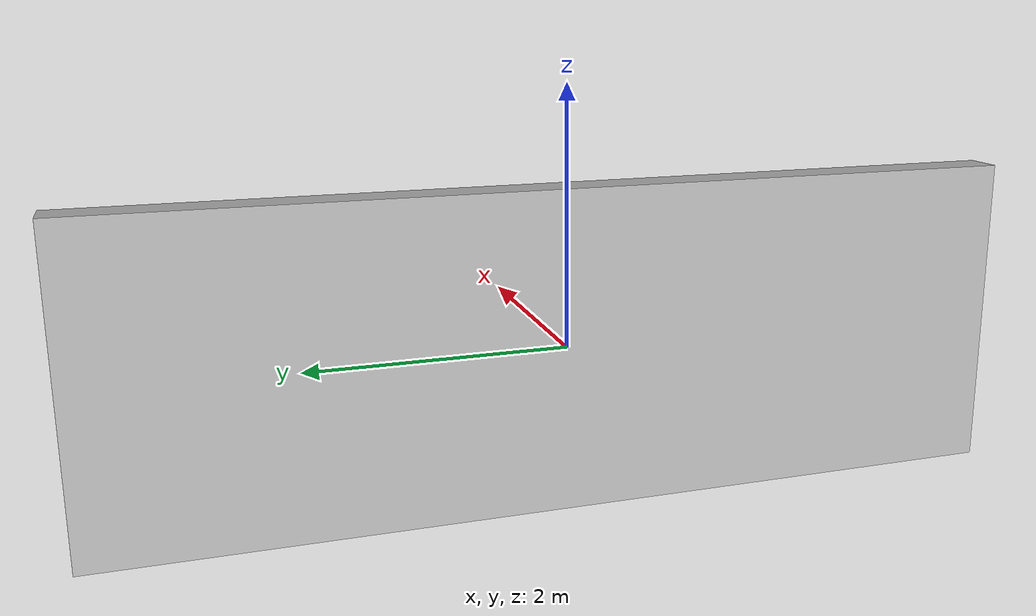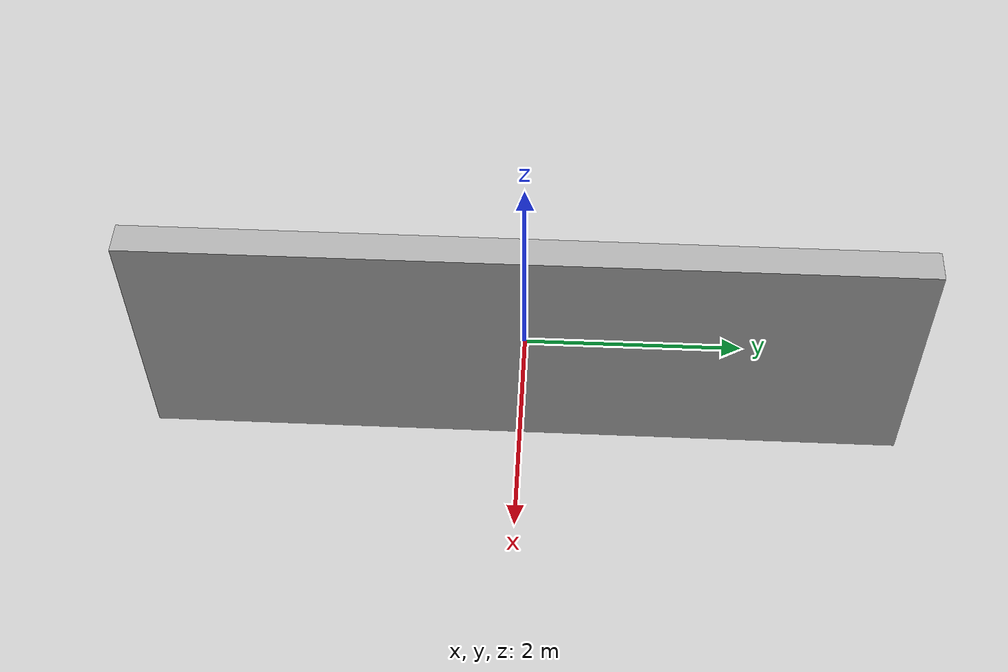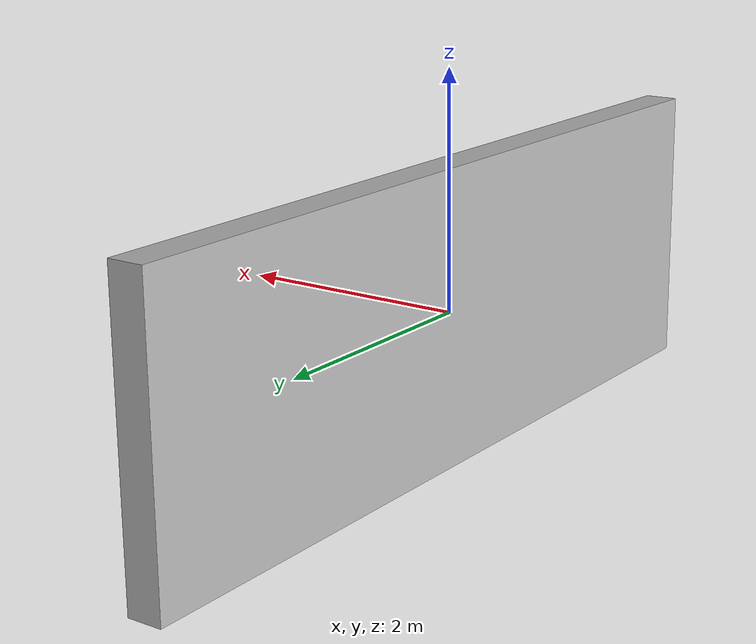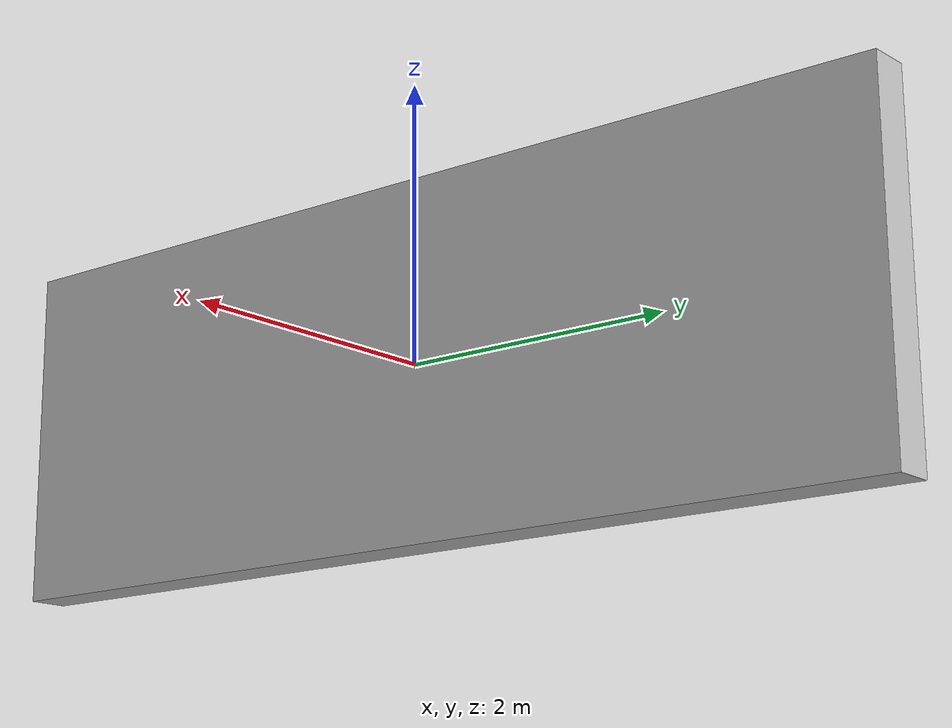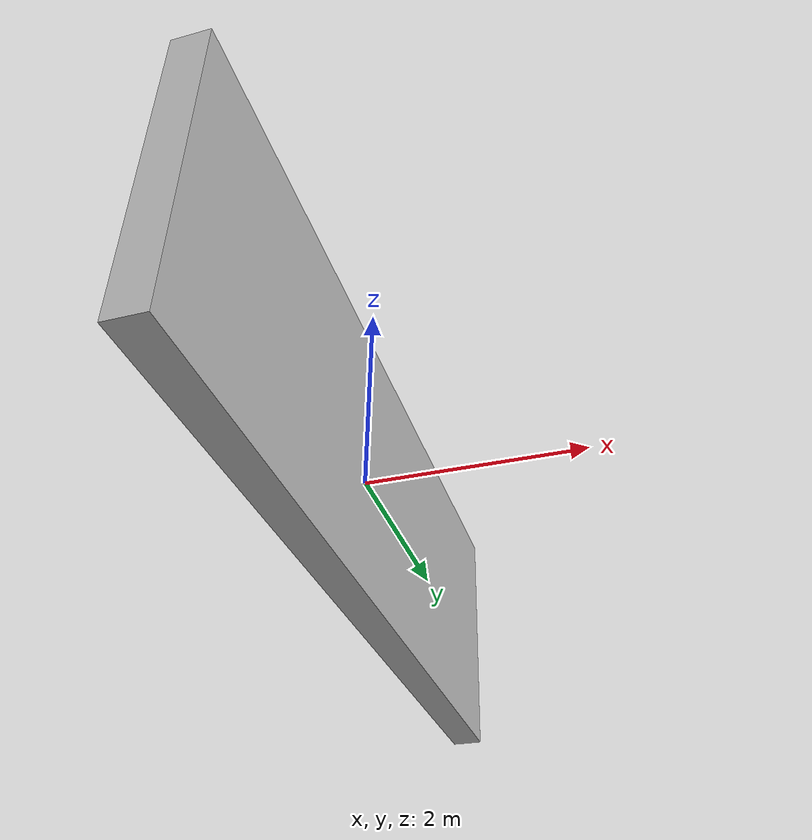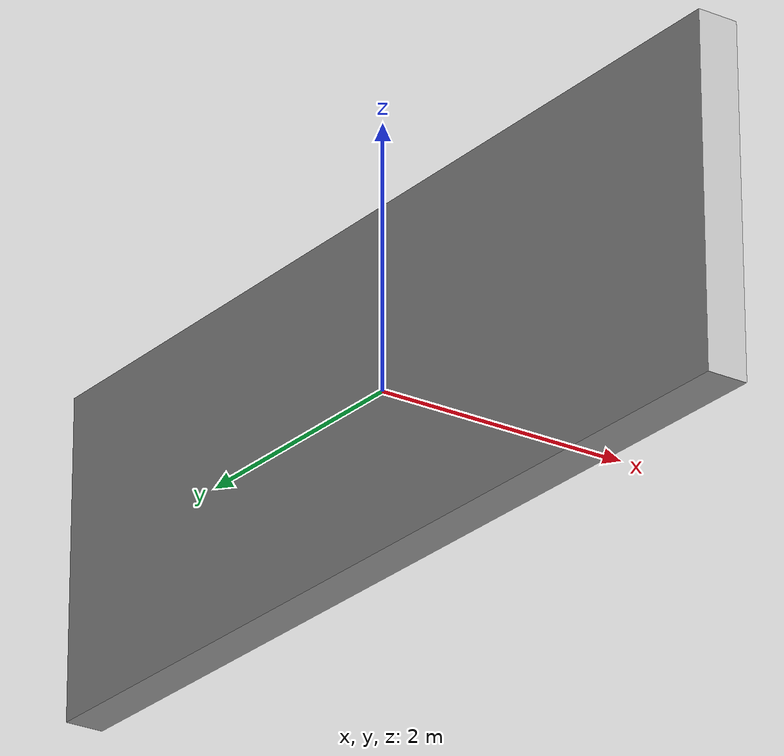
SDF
<?xml version="1.0" ?>
<sdf version="1.5">
  <model name="wall1_thi">
    <static>true</static>
    <link name="link">
      <collision name="collision">
        <geometry>
          <box>
            <size>0.3 7.25 2.5</size>
          </box>
        </geometry>
      </collision>
      <visual name="visual">
        <geometry>
          <box>
            <size>0.3 7.25 2.5</size>
          </box>
        </geometry>
      </visual>
    </link>
  </model>
</sdf>
